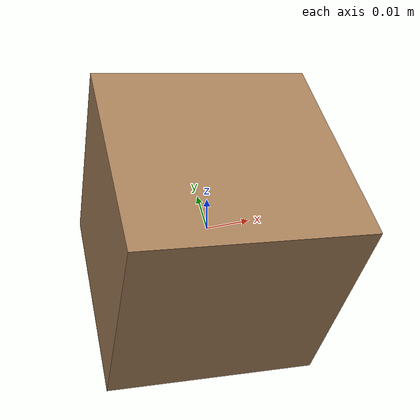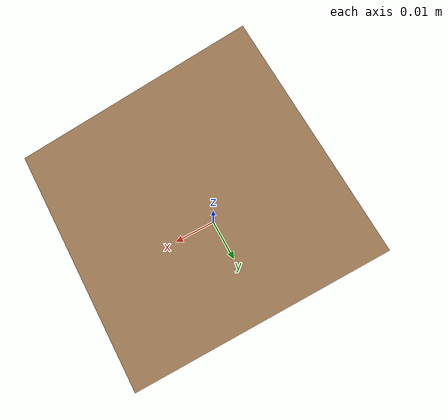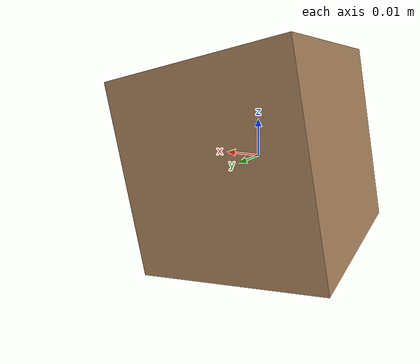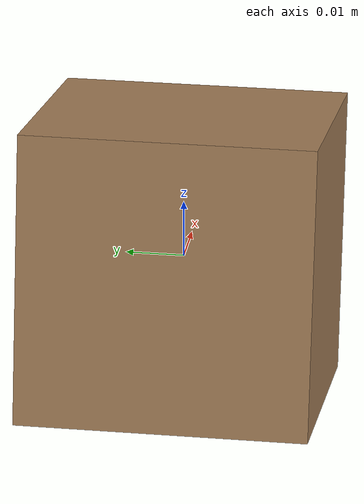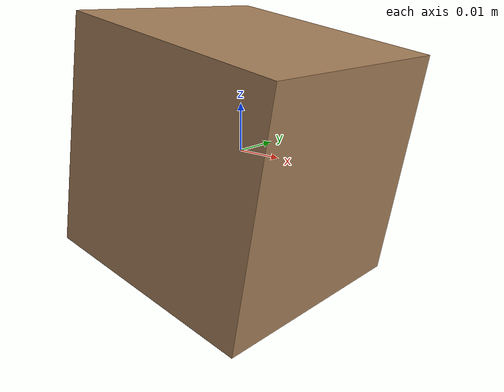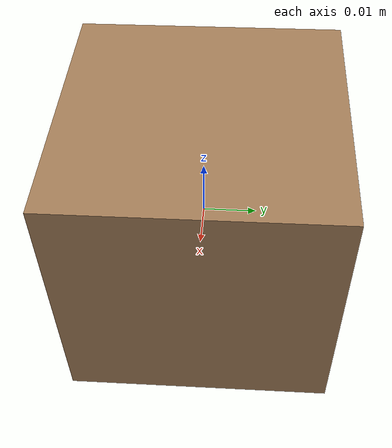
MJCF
<mujoco model="item_0007">
  <asset>
    <mesh name="item_0007_mesh" file="../square_22_pkg/stl_vis/item_0007.stl" scale="0.25 0.25 0.25"/>
  </asset>
  <worldbody>
    <body>
      <body name="object">
        <geom type="mesh" mesh="item_0007_mesh"
              rgba="0.65 0.50 0.35 1"
              solimp="0.998 0.998 0.001" solref="0.001 1"
              density="500"
              friction="0.9 0.005 0.0001"
              condim="4"
              contype="1" conaffinity="1"/>
      </body>
      <site rgba="0 0 0 0" size="0.005" pos="0 0 -0.02" name="bottom_site"/>
      <site rgba="0 0 0 0" size="0.005" pos="0 0  0.02" name="top_site"/>
      <site rgba="0 0 0 0" size="0.005" pos="0.02 0.02 0" name="horizontal_radius_site"/>
    </body>
  </worldbody>
</mujoco>
